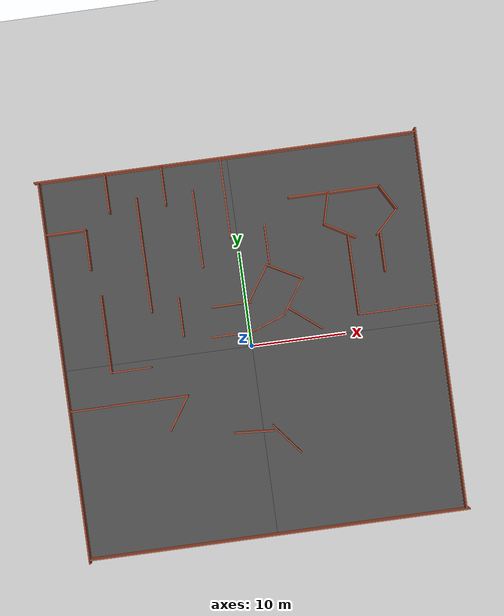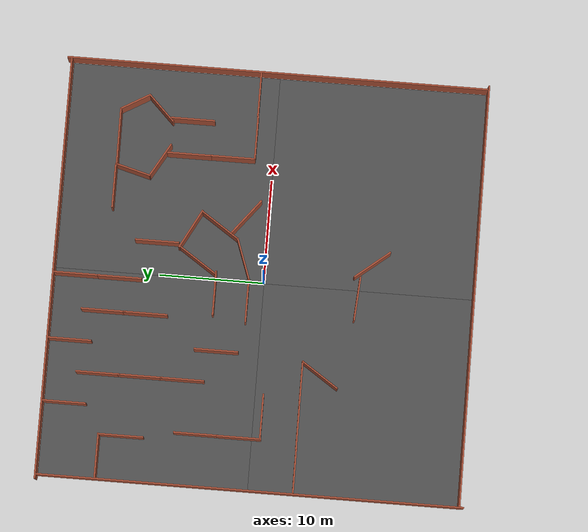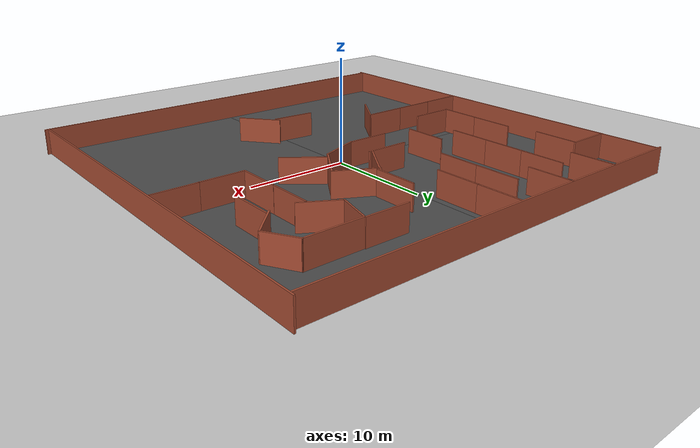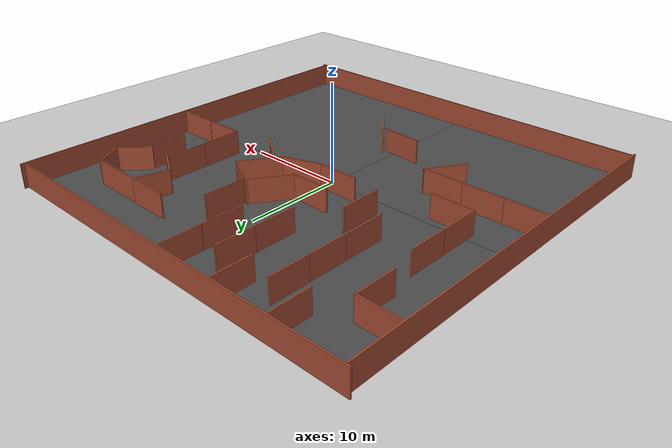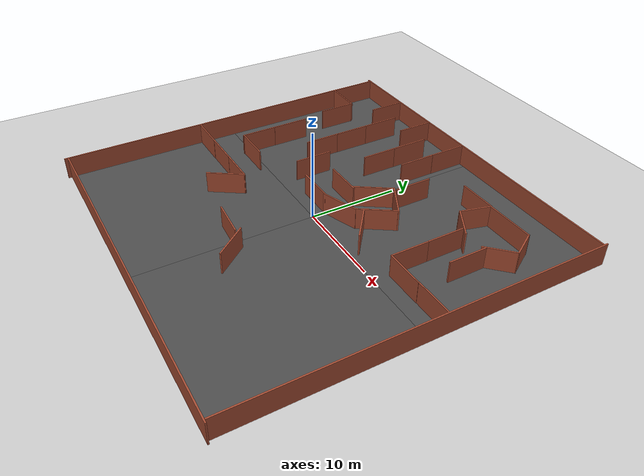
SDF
<sdf version="1.5">
 <world name="default">
  <light name="sun" type="directional">
   <pose>0 0 10 0 -0 0</pose>
   <diffuse>0.8 0.8 0.8 1</diffuse>
   <specular>0.2 0.2 0.2 1</specular>
   <attenuation>
    <range>1000</range>
    <constant>0.9</constant>
    <linear>0.01</linear>
    <quadratic>0.001</quadratic>
   </attenuation>
   <direction>-0.5 0.1 -0.9</direction>
  </light>
  <model name="ground_plane">
   <static>1</static>
   <link name="link">
    <collision name="collision">
     <geometry><plane><normal>0 0 1</normal><size>100 100</size></plane></geometry>
     <surface><friction><ode><mu>100</mu><mu2>50</mu2></ode></friction></surface>
    </collision>
    <visual name="visual">
     <cast_shadows>0</cast_shadows>
     <geometry><plane><normal>0 0 1</normal><size>100 100</size></plane></geometry>
     <material>
      <script><uri>file://media/materials/scripts/gazebo.material</uri><name>Gazebo/Grey</name></script>
     </material>
    </visual>
   </link>
  </model>
  <plugin name="gazebo_simple_world" filename="libgazebo_simple_world.so"/>
  <physics name="default_physics" default="0" type="ode">
   <max_step_size>0.001</max_step_size>
   <real_time_factor>1</real_time_factor>
   <real_time_update_rate>1000</real_time_update_rate>
   <gravity>0 0 -9.8</gravity>
   <magnetic_field>5.5645e-06 2.28758e-05 -4.23884e-05</magnetic_field>
  </physics>
  <scene><ambient>0.4 0.4 0.4 1</ambient><background>0.7 0.7 0.7 1</background><shadows>1</shadows></scene>
  <spherical_coordinates>
   <surface_model>EARTH_WGS84</surface_model>
   <latitude_deg>0</latitude_deg>
   <longitude_deg>0</longitude_deg>
   <elevation>0</elevation>
   <heading_deg>0</heading_deg>
  </spherical_coordinates>
  <model name="asphalt_plane">
   <static>1</static>
   <link name="link">
    <collision name="collision"><geometry><box><size>20 20 0.1</size></box></geometry></collision>
    <visual name="visual">
     <cast_shadows>0</cast_shadows>
     <geometry><box><size>20 20 0.1</size></box></geometry>
     <material>
      <script>
       <uri>model://asphalt_plane/materials/scripts</uri>
       <uri>model://asphalt_plane/materials/textures</uri>
       <name>vrc/asphalt</name>
      </script>
     </material>
    </visual>
   </link>
   <pose>10 10 0 0 -0 0</pose>
  </model>
  <model name="asphalt_plane_0">
   <static>1</static>
   <link name="link">
    <collision name="collision"><geometry><box><size>20 20 0.1</size></box></geometry></collision>
    <visual name="visual">
     <cast_shadows>0</cast_shadows>
     <geometry><box><size>20 20 0.1</size></box></geometry>
     <material>
      <script>
       <uri>model://asphalt_plane/materials/scripts</uri>
       <uri>model://asphalt_plane/materials/textures</uri>
       <name>vrc/asphalt</name>
      </script>
     </material>
    </visual>
   </link>
   <pose>-10 10 0 0 -0 0</pose>
  </model>
  <model name="asphalt_plane_1">
   <static>1</static>
   <link name="link">
    <collision name="collision"><geometry><box><size>20 20 0.1</size></box></geometry></collision>
    <visual name="visual">
     <cast_shadows>0</cast_shadows>
     <geometry><box><size>20 20 0.1</size></box></geometry>
     <material>
      <script>
       <uri>model://asphalt_plane/materials/scripts</uri>
       <uri>model://asphalt_plane/materials/textures</uri>
       <name>vrc/asphalt</name>
      </script>
     </material>
    </visual>
   </link>
   <pose>-10 -10 0 0 -0 0</pose>
  </model>
  <model name="asphalt_plane_2">
   <static>1</static>
   <link name="link">
    <collision name="collision"><geometry><box><size>20 20 0.1</size></box></geometry></collision>
    <visual name="visual">
     <cast_shadows>0</cast_shadows>
     <geometry><box><size>20 20 0.1</size></box></geometry>
     <material>
      <script>
       <uri>model://asphalt_plane/materials/scripts</uri>
       <uri>model://asphalt_plane/materials/textures</uri>
       <name>vrc/asphalt</name>
      </script>
     </material>
    </visual>
   </link>
   <pose>10 -10 0 0 -0 0</pose>
  </model>
  <model name="brick_longwalll">
   <pose>0.229981 -20.0786 0 0 -0 0</pose>
   <link name="brick_longwall_wall_0">
    <collision name="brick_longwall_wall_0_Collision">
     <geometry><box><size>40.5 0.15 2.5</size></box></geometry>
     <pose>0 0 1.25 0 -0 0</pose>
    </collision>
    <visual name="brick_longwall_wall_0_Visual">
     <pose>0 0 1.25 0 -0 0</pose>
     <geometry><box><size>40.5 0.15 2.5</size></box></geometry>
     <material>
      <script><uri>file://media/materials/scripts/gazebo.material</uri><name>Gazebo/Bricks</name></script>
      <ambient>1 1 1 1</ambient>
     </material>
    </visual>
    <pose>1e-06 0 0 0 -0 0</pose>
   </link>
   <static>1</static>
  </model>
  <model name="brick_longwalll_0">
   <pose>-20.0177 -0.255752 0 0 0 -1.57092</pose>
   <link name="brick_longwall_wall_0">
    <collision name="brick_longwall_wall_0_Collision">
     <geometry><box><size>40.5 0.15 2.5</size></box></geometry>
     <pose>0 0 1.25 0 -0 0</pose>
    </collision>
    <visual name="brick_longwall_wall_0_Visual">
     <pose>0 0 1.25 0 -0 0</pose>
     <geometry><box><size>40.5 0.15 2.5</size></box></geometry>
     <material>
      <script><uri>file://media/materials/scripts/gazebo.material</uri><name>Gazebo/Bricks</name></script>
      <ambient>1 1 1 1</ambient>
     </material>
    </visual>
    <pose>1e-06 0 0 0 -0 0</pose>
   </link>
   <static>1</static>
  </model>
  <model name="brick_longwalll_0_clone">
   <pose>20.1053 0.258056 0 0 0 -1.57092</pose>
   <link name="brick_longwall_wall_0">
    <collision name="brick_longwall_wall_0_Collision">
     <geometry><box><size>40.5 0.15 2.5</size></box></geometry>
     <pose>0 0 1.25 0 -0 0</pose>
    </collision>
    <visual name="brick_longwall_wall_0_Visual">
     <pose>0 0 1.25 0 -0 0</pose>
     <geometry><box><size>40.5 0.15 2.5</size></box></geometry>
     <material>
      <script><uri>file://media/materials/scripts/gazebo.material</uri><name>Gazebo/Bricks</name></script>
      <ambient>1 1 1 1</ambient>
     </material>
    </visual>
    <pose>1e-06 0 0 0 -0 0</pose>
   </link>
   <static>1</static>
  </model>
  <model name="brick_longwalll_clone">
   <pose>-0.214439 20.0862 0 0 -0 0</pose>
   <link name="brick_longwall_wall_0">
    <collision name="brick_longwall_wall_0_Collision">
     <geometry><box><size>40.5 0.15 2.5</size></box></geometry>
     <pose>0 0 1.25 0 -0 0</pose>
    </collision>
    <visual name="brick_longwall_wall_0_Visual">
     <pose>0 0 1.25 0 -0 0</pose>
     <geometry><box><size>40.5 0.15 2.5</size></box></geometry>
     <material>
      <script><uri>file://media/materials/scripts/gazebo.material</uri><name>Gazebo/Bricks</name></script>
      <ambient>1 1 1 1</ambient>
     </material>
    </visual>
    <pose>1e-06 0 0 0 -0 0</pose>
   </link>
   <static>1</static>
  </model>
  <model name="brick_longwall_room1">
   <pose>13.1523 12.4323 0 0 -0 0</pose>
   <link name="brick_longwall_wall_11">
    <collision name="brick_longwall_wall_11_Collision">
     <geometry><box><size>3.25 0.15 2.5</size></box></geometry>
     <pose>0 0 1.25 0 -0 0</pose>
    </collision>
    <visual name="brick_longwall_wall_11_Visual">
     <pose>0 0 1.25 0 -0 0</pose>
     <geometry><box><size>3.25 0.15 2.5</size></box></geometry>
     <material>
      <script><uri>file://media/materials/scripts/gazebo.material</uri><name>Gazebo/Bricks</name></script>
      <ambient>1 1 1 1</ambient>
     </material>
    </visual>
    <pose>3.12132 1.19483 0 0 0 -1.0472</pose>
   </link>
   <link name="brick_longwall_wall_12">
    <collision name="brick_longwall_wall_12_Collision">
     <geometry><box><size>3.5 0.15 2.5</size></box></geometry>
     <pose>0 0 1.25 0 -0 0</pose>
    </collision>
    <visual name="brick_longwall_wall_12_Visual">
     <pose>0 0 1.25 0 -0 0</pose>
     <geometry><box><size>3.5 0.15 2.5</size></box></geometry>
     <material>
      <script><uri>file://media/materials/scripts/gazebo.material</uri><name>Gazebo/Bricks</name></script>
      <ambient>1 1 1 1</ambient>
     </material>
    </visual>
    <pose>2.71192 -1.33192 0 0 0 -2.35619</pose>
   </link>
   <link name="brick_longwall_wall_7">
    <collision name="brick_longwall_wall_7_Collision">
     <geometry><box><size>5.52935 0.15 2.5</size></box></geometry>
     <pose>0 0 1.25 0 -0 0</pose>
    </collision>
    <visual name="brick_longwall_wall_7_Visual">
     <pose>0 0 1.25 0 -0 0</pose>
     <geometry><box><size>5.52935 0.15 2.5</size></box></geometry>
     <material>
      <script><uri>file://media/materials/scripts/gazebo.material</uri><name>Gazebo/Bricks</name></script>
      <ambient>1 1 1 1</ambient>
     </material>
    </visual>
    <pose>-0.343285 2.51793 0 0 0 -3.13444</pose>
   </link>
   <link name="brick_longwall_wall_8">
    <collision name="brick_longwall_wall_8_Collision">
     <geometry><box><size>3.5 0.15 2.5</size></box></geometry>
     <pose>0 0 1.25 0 -0 0</pose>
    </collision>
    <visual name="brick_longwall_wall_8_Visual">
     <pose>0 0 1.25 0 -0 0</pose>
     <geometry><box><size>3.5 0.15 2.5</size></box></geometry>
     <material>
      <script><uri>file://media/materials/scripts/gazebo.material</uri><name>Gazebo/Bricks</name></script>
      <ambient>1 1 1 1</ambient>
     </material>
    </visual>
    <pose>-3.46641 0.880761 0 0 0 -1.8326</pose>
   </link>
   <link name="brick_longwall_wall_9">
    <collision name="brick_longwall_wall_9_Collision">
     <geometry><box><size>3.75 0.15 2.5</size></box></geometry>
     <pose>0 0 1.25 0 -0 0</pose>
    </collision>
    <visual name="brick_longwall_wall_9_Visual">
     <pose>0 0 1.25 0 -0 0</pose>
     <geometry><box><size>3.75 0.15 2.5</size></box></geometry>
     <material>
      <script><uri>file://media/materials/scripts/gazebo.material</uri><name>Gazebo/Bricks</name></script>
      <ambient>1 1 1 1</ambient>
     </material>
    </visual>
    <pose>-2.34109 -1.63716 0 0 0 -0.523599</pose>
   </link>
   <static>1</static>
  </model>
  <model name="worlds_1">
   <pose>3 10.4406 0 0 -0 0</pose>
   <link name="brick_longwall_wall_0">
    <collision name="brick_longwall_wall_0_Collision">
     <geometry><box><size>4.25 0.15 2.5</size></box></geometry>
     <pose>0 0 1.25 0 -0 0</pose>
    </collision>
    <visual name="brick_longwall_wall_0_Visual">
     <pose>0 0 1.25 0 -0 0</pose>
     <geometry><box><size>4.25 0.15 2.5</size></box></geometry>
     <material>
      <script><uri>file://media/materials/scripts/gazebo.material</uri><name>Gazebo/Bricks</name></script>
      <ambient>1 1 1 1</ambient>
     </material>
    </visual>
    <pose>0 -0 0 0 -0 1.5708</pose>
   </link>
   <static>1</static>
  </model>
  <model name="worlds_2">
   <pose>4.42901 7.33195 0 0 -0 1.08023</pose>
   <link name="brick_longwall_wall_0">
    <collision name="brick_longwall_wall_0_Collision">
     <geometry><box><size>4.25 0.15 2.5</size></box></geometry>
     <pose>0 0 1.25 0 -0 0</pose>
    </collision>
    <visual name="brick_longwall_wall_0_Visual">
     <pose>0 0 1.25 0 -0 0</pose>
     <geometry><box><size>4.25 0.15 2.5</size></box></geometry>
     <material>
      <script><uri>file://media/materials/scripts/gazebo.material</uri><name>Gazebo/Bricks</name></script>
      <ambient>1 1 1 1</ambient>
     </material>
    </visual>
    <pose>0 -0 0 0 -0 1.5708</pose>
   </link>
   <static>1</static>
  </model>
  <model name="worlds_0_clone">
   <pose>-1 -9 0 0 -0 1.49697</pose>
   <link name="brick_longwall_wall_0">
    <collision name="brick_longwall_wall_0_Collision">
     <geometry><box><size>4.25 0.15 2.5</size></box></geometry>
     <pose>0 0 1.25 0 -0 0</pose>
    </collision>
    <visual name="brick_longwall_wall_0_Visual">
     <pose>0 0 1.25 0 -0 0</pose>
     <geometry><box><size>4.25 0.15 2.5</size></box></geometry>
     <material>
      <script><uri>file://media/materials/scripts/gazebo.material</uri><name>Gazebo/Bricks</name></script>
      <ambient>1 1 1 1</ambient>
     </material>
    </visual>
    <pose>0 -0 0 0 -0 1.5708</pose>
   </link>
   <static>1</static>
  </model>
  <model name="worlds_2_clone">
   <pose>2.34689 -10.1873 0 0 -0 0.67691</pose>
   <link name="brick_longwall_wall_0">
    <collision name="brick_longwall_wall_0_Collision">
     <geometry><box><size>4.25 0.15 2.5</size></box></geometry>
     <pose>0 0 1.25 0 -0 0</pose>
    </collision>
    <visual name="brick_longwall_wall_0_Visual">
     <pose>0 0 1.25 0 -0 0</pose>
     <geometry><box><size>4.25 0.15 2.5</size></box></geometry>
     <material>
      <script><uri>file://media/materials/scripts/gazebo.material</uri><name>Gazebo/Bricks</name></script>
      <ambient>1 1 1 1</ambient>
     </material>
    </visual>
    <pose>0 -0 0 0 -0 1.5708</pose>
   </link>
   <static>1</static>
  </model>
  <model name="worlds_1_clone">
   <pose>11.6021 8.07399 0 0 -0 0</pose>
   <link name="brick_longwall_wall_0">
    <collision name="brick_longwall_wall_0_Collision">
     <geometry><box><size>4.25 0.15 2.5</size></box></geometry>
     <pose>0 0 1.25 0 -0 0</pose>
    </collision>
    <visual name="brick_longwall_wall_0_Visual">
     <pose>0 0 1.25 0 -0 0</pose>
     <geometry><box><size>4.25 0.15 2.5</size></box></geometry>
     <material>
      <script><uri>file://media/materials/scripts/gazebo.material</uri><name>Gazebo/Bricks</name></script>
      <ambient>1 1 1 1</ambient>
     </material>
    </visual>
    <pose>0 -0 0 0 -0 1.5708</pose>
   </link>
   <static>1</static>
  </model>
  <model name="worlds_1_clone_0">
   <pose>11.6134 3.89135 0 0 -0 0</pose>
   <link name="brick_longwall_wall_0">
    <collision name="brick_longwall_wall_0_Collision">
     <geometry><box><size>4.25 0.15 2.5</size></box></geometry>
     <pose>0 0 1.25 0 -0 0</pose>
    </collision>
    <visual name="brick_longwall_wall_0_Visual">
     <pose>0 0 1.25 0 -0 0</pose>
     <geometry><box><size>4.25 0.15 2.5</size></box></geometry>
     <material>
      <script><uri>file://media/materials/scripts/gazebo.material</uri><name>Gazebo/Bricks</name></script>
      <ambient>1 1 1 1</ambient>
     </material>
    </visual>
    <pose>0 -0 0 0 -0 1.5708</pose>
   </link>
   <static>1</static>
  </model>
  <model name="worlds_1_clone_0_clone">
   <pose>13.736 1.79456 0 0 0 -1.57092</pose>
   <link name="brick_longwall_wall_0">
    <collision name="brick_longwall_wall_0_Collision">
     <geometry><box><size>4.25 0.15 2.5</size></box></geometry>
     <pose>0 0 1.25 0 -0 0</pose>
    </collision>
    <visual name="brick_longwall_wall_0_Visual">
     <pose>0 0 1.25 0 -0 0</pose>
     <geometry><box><size>4.25 0.15 2.5</size></box></geometry>
     <material>
      <script><uri>file://media/materials/scripts/gazebo.material</uri><name>Gazebo/Bricks</name></script>
      <ambient>1 1 1 1</ambient>
     </material>
    </visual>
    <pose>0 -0 0 0 -0 1.5708</pose>
   </link>
   <static>1</static>
  </model>
  <model name="worlds_1_clone_0_clone_clone">
   <pose>17.9203 1.82357 0 0 0 -1.57092</pose>
   <link name="brick_longwall_wall_0">
    <collision name="brick_longwall_wall_0_Collision">
     <geometry><box><size>4.25 0.15 2.5</size></box></geometry>
     <pose>0 0 1.25 0 -0 0</pose>
    </collision>
    <visual name="brick_longwall_wall_0_Visual">
     <pose>0 0 1.25 0 -0 0</pose>
     <geometry><box><size>4.25 0.15 2.5</size></box></geometry>
     <material>
      <script><uri>file://media/materials/scripts/gazebo.material</uri><name>Gazebo/Bricks</name></script>
      <ambient>1 1 1 1</ambient>
     </material>
    </visual>
    <pose>0 -0 0 0 -0 1.5708</pose>
   </link>
   <static>1</static>
  </model>
  <model name="worlds_1_clone_0_clone_clone_0">
   <pose>8 15 0 0 0 -1.57092</pose>
   <link name="brick_longwall_wall_0">
    <collision name="brick_longwall_wall_0_Collision">
     <geometry><box><size>4.25 0.15 2.5</size></box></geometry>
     <pose>0 0 1.25 0 -0 0</pose>
    </collision>
    <visual name="brick_longwall_wall_0_Visual">
     <pose>0 0 1.25 0 -0 0</pose>
     <geometry><box><size>4.25 0.15 2.5</size></box></geometry>
     <material>
      <script><uri>file://media/materials/scripts/gazebo.material</uri><name>Gazebo/Bricks</name></script>
      <ambient>1 1 1 1</ambient>
     </material>
    </visual>
    <pose>0 -0 0 0 -0 1.5708</pose>
   </link>
   <static>1</static>
  </model>
  <model name="worlds_1_clone_0_clone_clone_0_clone">
   <pose>-17.8162 14.4688 0 0 0 -1.57092</pose>
   <link name="brick_longwall_wall_0">
    <collision name="brick_longwall_wall_0_Collision">
     <geometry><box><size>4.25 0.15 2.5</size></box></geometry>
     <pose>0 0 1.25 0 -0 0</pose>
    </collision>
    <visual name="brick_longwall_wall_0_Visual">
     <pose>0 0 1.25 0 -0 0</pose>
     <geometry><box><size>4.25 0.15 2.5</size></box></geometry>
     <material>
      <script><uri>file://media/materials/scripts/gazebo.material</uri><name>Gazebo/Bricks</name></script>
      <ambient>1 1 1 1</ambient>
     </material>
    </visual>
    <pose>0 -0 0 0 -0 1.5708</pose>
   </link>
   <static>1</static>
  </model>
  <model name="worlds_1_clone_1">
   <pose>-13 18 0 0 -0 0</pose>
   <link name="brick_longwall_wall_0">
    <collision name="brick_longwall_wall_0_Collision">
     <geometry><box><size>4.25 0.15 2.5</size></box></geometry>
     <pose>0 0 1.25 0 -0 0</pose>
    </collision>
    <visual name="brick_longwall_wall_0_Visual">
     <pose>0 0 1.25 0 -0 0</pose>
     <geometry><box><size>4.25 0.15 2.5</size></box></geometry>
     <material>
      <script><uri>file://media/materials/scripts/gazebo.material</uri><name>Gazebo/Bricks</name></script>
      <ambient>1 1 1 1</ambient>
     </material>
    </visual>
    <pose>0 -0 0 0 -0 1.5708</pose>
   </link>
   <static>1</static>
  </model>
  <model name="worlds_1_clone_1_clone">
   <pose>-15.7734 12.3225 0 0 -0 0</pose>
   <link name="brick_longwall_wall_0">
    <collision name="brick_longwall_wall_0_Collision">
     <geometry><box><size>4.25 0.15 2.5</size></box></geometry>
     <pose>0 0 1.25 0 -0 0</pose>
    </collision>
    <visual name="brick_longwall_wall_0_Visual">
     <pose>0 0 1.25 0 -0 0</pose>
     <geometry><box><size>4.25 0.15 2.5</size></box></geometry>
     <material>
      <script><uri>file://media/materials/scripts/gazebo.material</uri><name>Gazebo/Bricks</name></script>
      <ambient>1 1 1 1</ambient>
     </material>
    </visual>
    <pose>0 -0 0 0 -0 1.5708</pose>
   </link>
   <static>1</static>
  </model>
  <model name="worlds_1_clone_1_clone_clone">
   <pose>-15.0638 5.287 0 0 -0 0</pose>
   <link name="brick_longwall_wall_0">
    <collision name="brick_longwall_wall_0_Collision">
     <geometry><box><size>4.25 0.15 2.5</size></box></geometry>
     <pose>0 0 1.25 0 -0 0</pose>
    </collision>
    <visual name="brick_longwall_wall_0_Visual">
     <pose>0 0 1.25 0 -0 0</pose>
     <geometry><box><size>4.25 0.15 2.5</size></box></geometry>
     <material>
      <script><uri>file://media/materials/scripts/gazebo.material</uri><name>Gazebo/Bricks</name></script>
      <ambient>1 1 1 1</ambient>
     </material>
    </visual>
    <pose>0 -0 0 0 -0 1.5708</pose>
   </link>
   <static>1</static>
  </model>
  <model name="worlds_1_clone_1_clone_clone_0">
   <pose>-15.0769 1.18275 0 0 -0 0</pose>
   <link name="brick_longwall_wall_0">
    <collision name="brick_longwall_wall_0_Collision">
     <geometry><box><size>4.25 0.15 2.5</size></box></geometry>
     <pose>0 0 1.25 0 -0 0</pose>
    </collision>
    <visual name="brick_longwall_wall_0_Visual">
     <pose>0 0 1.25 0 -0 0</pose>
     <geometry><box><size>4.25 0.15 2.5</size></box></geometry>
     <material>
      <script><uri>file://media/materials/scripts/gazebo.material</uri><name>Gazebo/Bricks</name></script>
      <ambient>1 1 1 1</ambient>
     </material>
    </visual>
    <pose>0 -0 0 0 -0 1.5708</pose>
   </link>
   <static>1</static>
  </model>
  <model name="worlds_1_clone_0_clone_clone_0_clone_clone">
   <pose>-17.8054 -4.32089 0 0 0 -1.57092</pose>
   <link name="brick_longwall_wall_0">
    <collision name="brick_longwall_wall_0_Collision">
     <geometry><box><size>4.25 0.15 2.5</size></box></geometry>
     <pose>0 0 1.25 0 -0 0</pose>
    </collision>
    <visual name="brick_longwall_wall_0_Visual">
     <pose>0 0 1.25 0 -0 0</pose>
     <geometry><box><size>4.25 0.15 2.5</size></box></geometry>
     <material>
      <script><uri>file://media/materials/scripts/gazebo.material</uri><name>Gazebo/Bricks</name></script>
      <ambient>1 1 1 1</ambient>
     </material>
    </visual>
    <pose>0 -0 0 0 -0 1.5708</pose>
   </link>
   <static>1</static>
  </model>
  <model name="worlds_1_clone_0_clone_clone_0_clone_clone_0">
   <pose>-13.6699 -4.29855 0 0 0 -1.57092</pose>
   <link name="brick_longwall_wall_0">
    <collision name="brick_longwall_wall_0_Collision">
     <geometry><box><size>4.25 0.15 2.5</size></box></geometry>
     <pose>0 0 1.25 0 -0 0</pose>
    </collision>
    <visual name="brick_longwall_wall_0_Visual">
     <pose>0 0 1.25 0 -0 0</pose>
     <geometry><box><size>4.25 0.15 2.5</size></box></geometry>
     <material>
      <script><uri>file://media/materials/scripts/gazebo.material</uri><name>Gazebo/Bricks</name></script>
      <ambient>1 1 1 1</ambient>
     </material>
    </visual>
    <pose>0 -0 0 0 -0 1.5708</pose>
   </link>
   <static>1</static>
  </model>
  <model name="worlds_1_clone_0_clone_clone_0_clone_clone_1">
   <pose>-9.47339 -4.28892 0 0 0 -1.57092</pose>
   <link name="brick_longwall_wall_0">
    <collision name="brick_longwall_wall_0_Collision">
     <geometry><box><size>4.25 0.15 2.5</size></box></geometry>
     <pose>0 0 1.25 0 -0 0</pose>
    </collision>
    <visual name="brick_longwall_wall_0_Visual">
     <pose>0 0 1.25 0 -0 0</pose>
     <geometry><box><size>4.25 0.15 2.5</size></box></geometry>
     <material>
      <script><uri>file://media/materials/scripts/gazebo.material</uri><name>Gazebo/Bricks</name></script>
      <ambient>1 1 1 1</ambient>
     </material>
    </visual>
    <pose>0 -0 0 0 -0 1.5708</pose>
   </link>
   <static>1</static>
  </model>
  <model name="worlds_1_clone_1_clone_0">
   <pose>-0.708445 17.9147 0 0 -0 0</pose>
   <link name="brick_longwall_wall_0">
    <collision name="brick_longwall_wall_0_Collision">
     <geometry><box><size>4.25 0.15 2.5</size></box></geometry>
     <pose>0 0 1.25 0 -0 0</pose>
    </collision>
    <visual name="brick_longwall_wall_0_Visual">
     <pose>0 0 1.25 0 -0 0</pose>
     <geometry><box><size>4.25 0.15 2.5</size></box></geometry>
     <material>
      <script><uri>file://media/materials/scripts/gazebo.material</uri><name>Gazebo/Bricks</name></script>
      <ambient>1 1 1 1</ambient>
     </material>
    </visual>
    <pose>0 -0 0 0 -0 1.5708</pose>
   </link>
   <static>1</static>
  </model>
  <model name="worlds_1_clone_1_clone_1">
   <pose>-0.716318 13.714 0 0 -0 0</pose>
   <link name="brick_longwall_wall_0">
    <collision name="brick_longwall_wall_0_Collision">
     <geometry><box><size>4.25 0.15 2.5</size></box></geometry>
     <pose>0 0 1.25 0 -0 0</pose>
    </collision>
    <visual name="brick_longwall_wall_0_Visual">
     <pose>0 0 1.25 0 -0 0</pose>
     <geometry><box><size>4.25 0.15 2.5</size></box></geometry>
     <material>
      <script><uri>file://media/materials/scripts/gazebo.material</uri><name>Gazebo/Bricks</name></script>
      <ambient>1 1 1 1</ambient>
     </material>
    </visual>
    <pose>0 -0 0 0 -0 1.5708</pose>
   </link>
   <static>1</static>
  </model>
  <model name="worlds_1_clone_1_clone_2">
   <pose>-7 18 0 0 -0 0</pose>
   <link name="brick_longwall_wall_0">
    <collision name="brick_longwall_wall_0_Collision">
     <geometry><box><size>4.25 0.15 2.5</size></box></geometry>
     <pose>0 0 1.25 0 -0 0</pose>
    </collision>
    <visual name="brick_longwall_wall_0_Visual">
     <pose>0 0 1.25 0 -0 0</pose>
     <geometry><box><size>4.25 0.15 2.5</size></box></geometry>
     <material>
      <script><uri>file://media/materials/scripts/gazebo.material</uri><name>Gazebo/Bricks</name></script>
      <ambient>1 1 1 1</ambient>
     </material>
    </visual>
    <pose>0 -0 0 0 -0 1.5708</pose>
   </link>
   <static>1</static>
  </model>
  <model name="worlds_1_clone_1_clone_3">
   <pose>-10 15 0 0 -0 0</pose>
   <link name="brick_longwall_wall_0">
    <collision name="brick_longwall_wall_0_Collision">
     <geometry><box><size>4.25 0.15 2.5</size></box></geometry>
     <pose>0 0 1.25 0 -0 0</pose>
    </collision>
    <visual name="brick_longwall_wall_0_Visual">
     <pose>0 0 1.25 0 -0 0</pose>
     <geometry><box><size>4.25 0.15 2.5</size></box></geometry>
     <material>
      <script><uri>file://media/materials/scripts/gazebo.material</uri><name>Gazebo/Bricks</name></script>
      <ambient>1 1 1 1</ambient>
     </material>
    </visual>
    <pose>0 -0 0 0 -0 1.5708</pose>
   </link>
   <static>1</static>
  </model>
  <model name="worlds_1_clone_1_clone_4">
   <pose>-10 11 0 0 -0 0</pose>
   <link name="brick_longwall_wall_0">
    <collision name="brick_longwall_wall_0_Collision">
     <geometry><box><size>4.25 0.15 2.5</size></box></geometry>
     <pose>0 0 1.25 0 -0 0</pose>
    </collision>
    <visual name="brick_longwall_wall_0_Visual">
     <pose>0 0 1.25 0 -0 0</pose>
     <geometry><box><size>4.25 0.15 2.5</size></box></geometry>
     <material>
      <script><uri>file://media/materials/scripts/gazebo.material</uri><name>Gazebo/Bricks</name></script>
      <ambient>1 1 1 1</ambient>
     </material>
    </visual>
    <pose>0 -0 0 0 -0 1.5708</pose>
   </link>
   <static>1</static>
  </model>
  <model name="worlds_1_clone_1_clone_5">
   <pose>-4 15 0 0 -0 0</pose>
   <link name="brick_longwall_wall_0">
    <collision name="brick_longwall_wall_0_Collision">
     <geometry><box><size>4.25 0.15 2.5</size></box></geometry>
     <pose>0 0 1.25 0 -0 0</pose>
    </collision>
    <visual name="brick_longwall_wall_0_Visual">
     <pose>0 0 1.25 0 -0 0</pose>
     <geometry><box><size>4.25 0.15 2.5</size></box></geometry>
     <material>
      <script><uri>file://media/materials/scripts/gazebo.material</uri><name>Gazebo/Bricks</name></script>
      <ambient>1 1 1 1</ambient>
     </material>
    </visual>
    <pose>0 -0 0 0 -0 1.5708</pose>
   </link>
   <static>1</static>
  </model>
  <model name="worlds_1_clone_1_clone_6">
   <pose>-4 11 0 0 -0 0</pose>
   <link name="brick_longwall_wall_0">
    <collision name="brick_longwall_wall_0_Collision">
     <geometry><box><size>4.25 0.15 2.5</size></box></geometry>
     <pose>0 0 1.25 0 -0 0</pose>
    </collision>
    <visual name="brick_longwall_wall_0_Visual">
     <pose>0 0 1.25 0 -0 0</pose>
     <geometry><box><size>4.25 0.15 2.5</size></box></geometry>
     <material>
      <script><uri>file://media/materials/scripts/gazebo.material</uri><name>Gazebo/Bricks</name></script>
      <ambient>1 1 1 1</ambient>
     </material>
    </visual>
    <pose>0 -0 0 0 -0 1.5708</pose>
   </link>
   <static>1</static>
  </model>
  <model name="worlds_1_clone_1_clone_7">
   <pose>-10 7 0 0 -0 0</pose>
   <link name="brick_longwall_wall_0">
    <collision name="brick_longwall_wall_0_Collision">
     <geometry><box><size>4.25 0.15 2.5</size></box></geometry>
     <pose>0 0 1.25 0 -0 0</pose>
    </collision>
    <visual name="brick_longwall_wall_0_Visual">
     <pose>0 0 1.25 0 -0 0</pose>
     <geometry><box><size>4.25 0.15 2.5</size></box></geometry>
     <material>
      <script><uri>file://media/materials/scripts/gazebo.material</uri><name>Gazebo/Bricks</name></script>
      <ambient>1 1 1 1</ambient>
     </material>
    </visual>
    <pose>0 -0 0 0 -0 1.5708</pose>
   </link>
   <static>1</static>
  </model>
  <model name="worlds_1_clone_0_clone_clone_0_clone_clone_0_clone">
   <pose>-12.8938 -0.809745 0 0 0 -1.57092</pose>
   <link name="brick_longwall_wall_0">
    <collision name="brick_longwall_wall_0_Collision">
     <geometry><box><size>4.25 0.15 2.5</size></box></geometry>
     <pose>0 0 1.25 0 -0 0</pose>
    </collision>
    <visual name="brick_longwall_wall_0_Visual">
     <pose>0 0 1.25 0 -0 0</pose>
     <geometry><box><size>4.25 0.15 2.5</size></box></geometry>
     <material>
      <script><uri>file://media/materials/scripts/gazebo.material</uri><name>Gazebo/Bricks</name></script>
      <ambient>1 1 1 1</ambient>
     </material>
    </visual>
    <pose>0 -0 0 0 -0 1.5708</pose>
   </link>
   <static>1</static>
  </model>
  <model name="worlds_1_clone_1_clone_7_clone">
   <pose>-7 4 0 0 -0 0</pose>
   <link name="brick_longwall_wall_0">
    <collision name="brick_longwall_wall_0_Collision">
     <geometry><box><size>4.25 0.15 2.5</size></box></geometry>
     <pose>0 0 1.25 0 -0 0</pose>
    </collision>
    <visual name="brick_longwall_wall_0_Visual">
     <pose>0 0 1.25 0 -0 0</pose>
     <geometry><box><size>4.25 0.15 2.5</size></box></geometry>
     <material>
      <script><uri>file://media/materials/scripts/gazebo.material</uri><name>Gazebo/Bricks</name></script>
      <ambient>1 1 1 1</ambient>
     </material>
    </visual>
    <pose>0 -0 0 0 -0 1.5708</pose>
   </link>
   <static>1</static>
  </model>
  <model name="worlds_1_clone_1_clone_7_clone_clone">
   <pose>1.48825 6.4581 0 0 0 -0.589381</pose>
   <link name="brick_longwall_wall_0">
    <collision name="brick_longwall_wall_0_Collision">
     <geometry><box><size>4.25 0.15 2.5</size></box></geometry>
     <pose>0 0 1.25 0 -0 0</pose>
    </collision>
    <visual name="brick_longwall_wall_0_Visual">
     <pose>0 0 1.25 0 -0 0</pose>
     <geometry><box><size>4.25 0.15 2.5</size></box></geometry>
     <material>
      <script><uri>file://media/materials/scripts/gazebo.material</uri><name>Gazebo/Bricks</name></script>
      <ambient>1 1 1 1</ambient>
     </material>
    </visual>
    <pose>0 -0 0 0 -0 1.5708</pose>
   </link>
   <static>1</static>
  </model>
  <model name="worlds_1_clone_1_clone_7_clone_clone_clone">
   <pose>5 4.58681 0 0 0 -0.589381</pose>
   <link name="brick_longwall_wall_0">
    <collision name="brick_longwall_wall_0_Collision">
     <geometry><box><size>4.25 0.15 2.5</size></box></geometry>
     <pose>0 0 1.25 0 -0 0</pose>
    </collision>
    <visual name="brick_longwall_wall_0_Visual">
     <pose>0 0 1.25 0 -0 0</pose>
     <geometry><box><size>4.25 0.15 2.5</size></box></geometry>
     <material>
      <script><uri>file://media/materials/scripts/gazebo.material</uri><name>Gazebo/Bricks</name></script>
      <ambient>1 1 1 1</ambient>
     </material>
    </visual>
    <pose>0 -0 0 0 -0 1.5708</pose>
   </link>
   <static>1</static>
  </model>
  <model name="worlds_1_clone_0_clone_clone_0_clone_clone_0_clone_clone">
   <pose>-1.54431 4.60476 0 0 0 -1.57092</pose>
   <link name="brick_longwall_wall_0">
    <collision name="brick_longwall_wall_0_Collision">
     <geometry><box><size>4.25 0.15 2.5</size></box></geometry>
     <pose>0 0 1.25 0 -0 0</pose>
    </collision>
    <visual name="brick_longwall_wall_0_Visual">
     <pose>0 0 1.25 0 -0 0</pose>
     <geometry><box><size>4.25 0.15 2.5</size></box></geometry>
     <material>
      <script><uri>file://media/materials/scripts/gazebo.material</uri><name>Gazebo/Bricks</name></script>
      <ambient>1 1 1 1</ambient>
     </material>
    </visual>
    <pose>0 -0 0 0 -0 1.5708</pose>
   </link>
   <static>1</static>
  </model>
  <model name="worlds_1_clone_0_clone_clone_0_clone_clone_0_clone_clone_0">
   <pose>1.87166 2.0906 0 0 0 -1.22347</pose>
   <link name="brick_longwall_wall_0">
    <collision name="brick_longwall_wall_0_Collision">
     <geometry><box><size>4.25 0.15 2.5</size></box></geometry>
     <pose>0 0 1.25 0 -0 0</pose>
    </collision>
    <visual name="brick_longwall_wall_0_Visual">
     <pose>0 0 1.25 0 -0 0</pose>
     <geometry><box><size>4.25 0.15 2.5</size></box></geometry>
     <material>
      <script><uri>file://media/materials/scripts/gazebo.material</uri><name>Gazebo/Bricks</name></script>
      <ambient>1 1 1 1</ambient>
     </material>
    </visual>
    <pose>0 -0 0 0 -0 1.5708</pose>
   </link>
   <static>1</static>
  </model>
  <model name="worlds_1_clone_0_clone_clone_0_clone_clone_0_clone_clone_clone">
   <pose>-2 1.45154 0 0 0 -1.57092</pose>
   <link name="brick_longwall_wall_0">
    <collision name="brick_longwall_wall_0_Collision">
     <geometry><box><size>4.25 0.15 2.5</size></box></geometry>
     <pose>0 0 1.25 0 -0 0</pose>
    </collision>
    <visual name="brick_longwall_wall_0_Visual">
     <pose>0 0 1.25 0 -0 0</pose>
     <geometry><box><size>4.25 0.15 2.5</size></box></geometry>
     <material>
      <script><uri>file://media/materials/scripts/gazebo.material</uri><name>Gazebo/Bricks</name></script>
      <ambient>1 1 1 1</ambient>
     </material>
    </visual>
    <pose>0 -0 0 0 -0 1.5708</pose>
   </link>
   <static>1</static>
  </model>
  <model name="worlds_1_clone_1_clone_7_clone_clone_0">
   <pose>6.00131 2.13117 0 0 -0 0.900287</pose>
   <link name="brick_longwall_wall_0">
    <collision name="brick_longwall_wall_0_Collision">
     <geometry><box><size>4.25 0.15 2.5</size></box></geometry>
     <pose>0 0 1.25 0 -0 0</pose>
    </collision>
    <visual name="brick_longwall_wall_0_Visual">
     <pose>0 0 1.25 0 -0 0</pose>
     <geometry><box><size>4.25 0.15 2.5</size></box></geometry>
     <material>
      <script><uri>file://media/materials/scripts/gazebo.material</uri><name>Gazebo/Bricks</name></script>
      <ambient>1 1 1 1</ambient>
     </material>
    </visual>
    <pose>0 -0 0 0 -0 1.5708</pose>
   </link>
   <static>1</static>
  </model>
  <model name="worlds_1_clone_1_clone_7_clone_clone_clone_0">
   <pose>-8.55218 -6 0 0 0 -0.589381</pose>
   <link name="brick_longwall_wall_0">
    <collision name="brick_longwall_wall_0_Collision">
     <geometry><box><size>4.25 0.15 2.5</size></box></geometry>
     <pose>0 0 1.25 0 -0 0</pose>
    </collision>
    <visual name="brick_longwall_wall_0_Visual">
     <pose>0 0 1.25 0 -0 0</pose>
     <geometry><box><size>4.25 0.15 2.5</size></box></geometry>
     <material>
      <script><uri>file://media/materials/scripts/gazebo.material</uri><name>Gazebo/Bricks</name></script>
      <ambient>1 1 1 1</ambient>
     </material>
    </visual>
    <pose>0 -0 0 0 -0 1.5708</pose>
   </link>
   <static>1</static>
  </model>
  <model name="worlds_1_clone_clone">
   <pose>15 8 0 0 -0 0</pose>
   <link name="brick_longwall_wall_0">
    <collision name="brick_longwall_wall_0_Collision">
     <geometry><box><size>4.25 0.15 2.5</size></box></geometry>
     <pose>0 0 1.25 0 -0 0</pose>
    </collision>
    <visual name="brick_longwall_wall_0_Visual">
     <pose>0 0 1.25 0 -0 0</pose>
     <geometry><box><size>4.25 0.15 2.5</size></box></geometry>
     <material>
      <script><uri>file://media/materials/scripts/gazebo.material</uri><name>Gazebo/Bricks</name></script>
      <ambient>1 1 1 1</ambient>
     </material>
    </visual>
    <pose>0 -0 0 0 -0 1.5708</pose>
   </link>
   <static>1</static>
  </model>
 </world>
</sdf>
